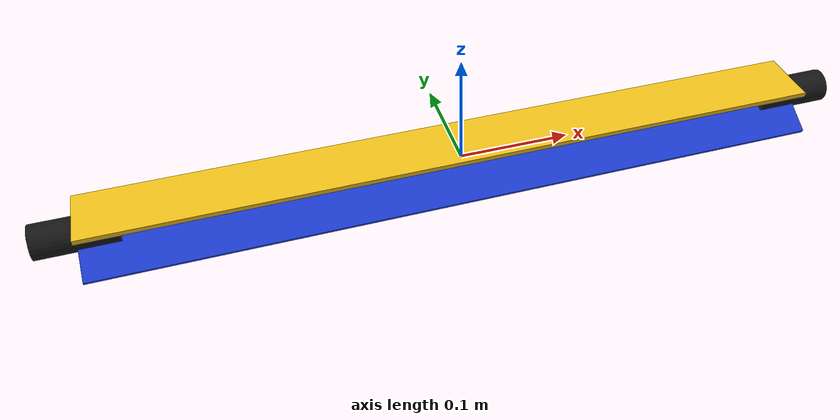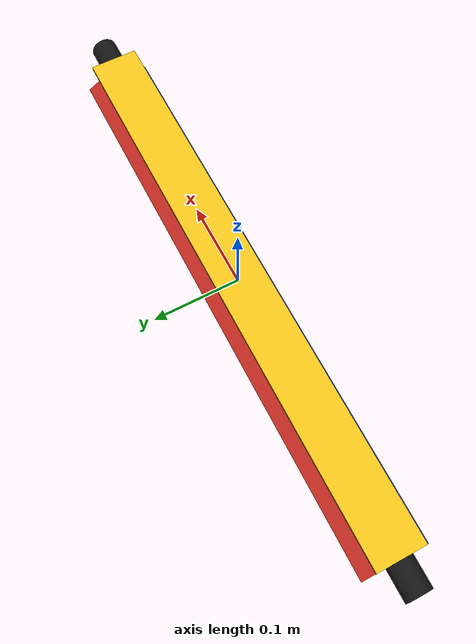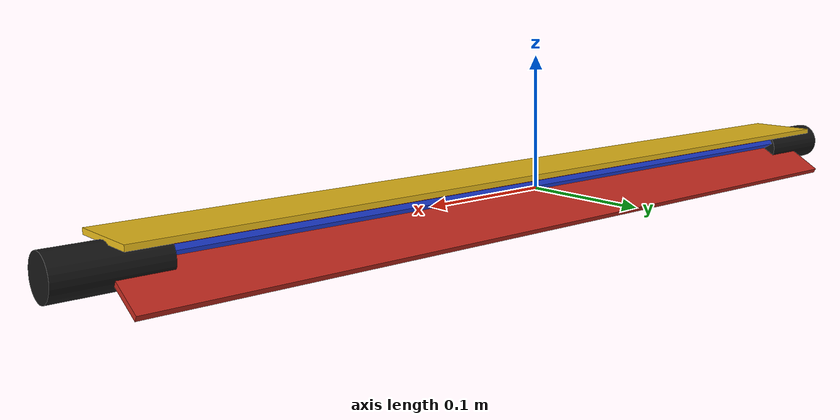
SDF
<?xml version="1.0" ?>
<sdf version="1.7">
  <model name="toggle">
    <static>true</static>
    <link name="body">
      <pose>0 0 0 0 0 0</pose>
      <visual name="face_yellow">
        <pose>0 0 0.01507 0 0 0</pose>
        <geometry>
          <box><size>0.656 0.0562 0.004</size></box>
        </geometry>
        <material>
        <ambient>0.92 0.74 0.1 1</ambient>
        <diffuse>0.92 0.74 0.1 1</diffuse>
        <specular>0.1 0.1 0.1 1.0</specular>
        <emissive>0 0 0 1</emissive>
      </material>
      </visual>
      <visual name="face_blue">
        <pose>0 -0.01305 -0.007535 0.5236 0 0</pose>
        <geometry>
          <box><size>0.656 0.0562 0.004</size></box>
        </geometry>
        <material>
        <ambient>0.1 0.22 0.78 1</ambient>
        <diffuse>0.1 0.22 0.78 1</diffuse>
        <specular>0.1 0.1 0.1 1.0</specular>
        <emissive>0 0 0 1</emissive>
      </material>
      </visual>
      <visual name="face_red">
        <pose>0 0.01305 -0.007535 2.618 0 0</pose>
        <geometry>
          <box><size>0.656 0.0562 0.004</size></box>
        </geometry>
        <material>
        <ambient>0.75 0.16 0.12 1</ambient>
        <diffuse>0.75 0.16 0.12 1</diffuse>
        <specular>0.1 0.1 0.1 1.0</specular>
        <emissive>0 0 0 1</emissive>
      </material>
      </visual>
      <visual name="shaft_l">
        <pose>-0.328 0 0 0 1.5708 0</pose>
        <geometry>
          <cylinder><radius>0.015</radius><length>0.07</length></cylinder>
        </geometry>
        <material>
        <ambient>0.08 0.08 0.08 1</ambient>
        <diffuse>0.08 0.08 0.08 1</diffuse>
        <specular>0.1 0.1 0.1 1.0</specular>
        <emissive>0 0 0 1</emissive>
      </material>
      </visual>
      <visual name="shaft_r">
        <pose>0.328 0 0 0 1.5708 0</pose>
        <geometry>
          <cylinder><radius>0.015</radius><length>0.07</length></cylinder>
        </geometry>
        <material>
        <ambient>0.08 0.08 0.08 1</ambient>
        <diffuse>0.08 0.08 0.08 1</diffuse>
        <specular>0.1 0.1 0.1 1.0</specular>
        <emissive>0 0 0 1</emissive>
      </material>
      </visual>
      <collision name="collision">
        <pose>0 0 -0.0075 0 0 0</pose>
        <geometry>
          <box><size>0.656 0.06 0.05</size></box>
        </geometry>
        <surface>
          <friction>
            <ode><mu>0.5</mu><mu2>0.5</mu2></ode>
          </friction>
        </surface>
      </collision>
    </link>
  </model>
</sdf>
